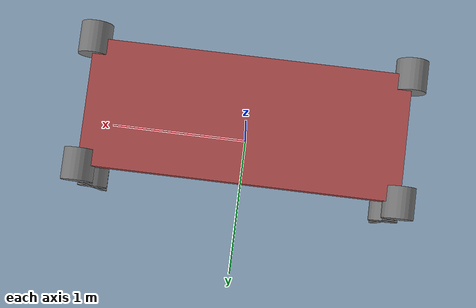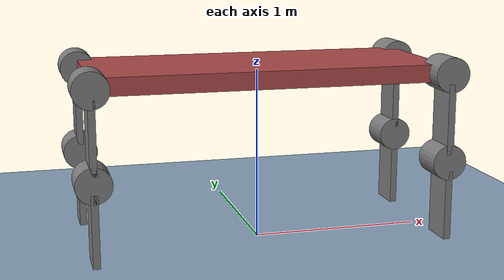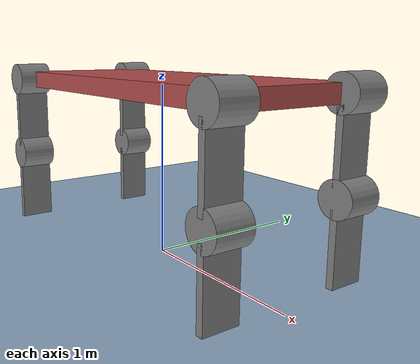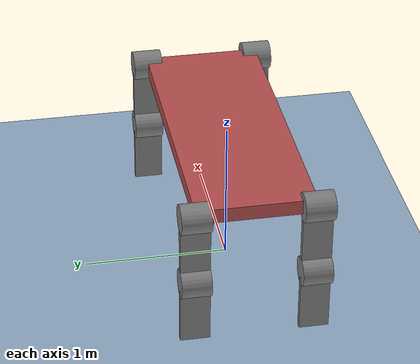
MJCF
<mujoco>
  <option gravity="0 0 -9.81" density="1.204" viscosity="1.8e-5" integrator="implicit"/>

  <visual>
    <global elevation="-10"/>
    <headlight ambient="0.35 0.35 0.35" diffuse="0.65 0.65 0.65" specular="0.10 0.10 0.10"/>
  </visual>

  <default>
    <tendon limited="true" width="0.003" rgba="1 1 1 1"/>
    <geom friction=".2"/>
    <default class="weight">
      <geom rgba=".8 .4 .8 1"/>
      <site rgba=".8 .4 .8 1"/>
    </default>
    <default class="balloon">
      <geom density="0.167" fluidshape="ellipsoid"/>
      <default class="pink">
        <geom rgba="1 .6 .7 1"/>
        <site rgba="1 .6 .7 1"/>
      </default>
      <default class="blue">
        <geom rgba=".3 .7 .9 1"/>
        <site rgba=".3 .7 .9 1"/>
      </default>
      <default class="green">
        <geom rgba=".4 .9 .5 1"/>
        <site rgba=".4 .9 .5 1"/>
      </default>
      <default class="orange">
        <geom rgba="1 .4 0 1"/>
        <site rgba="1 .4 0 1"/>
      </default>
    </default>
  </default>

  <asset>
    <texture name="grid" type="2d" builtin="checker" width="512" height="512" rgb2="0.7 0.8 0.9" rgb1="0.4 0.5 0.6"/>
    <material name="grid" texture="grid" texrepeat="2 2" texuniform="true" reflectance=".6"/>
  </asset>

  <worldbody>
    <geom name="ground" type="plane" size="5 5 .05" pos="0 0 0" material="grid" solref="0.004 1" solimp="0.9 0.95 0.001" />

    <camera name="Above" pos="0 0 2" xyaxes="1 0 0 0 1 0"/>
    <camera name="Side" pos="0 -2 .2" xyaxes="1 0 0 0 .02 .97"/>
    <!-- 俯瞰気味のカメラ -->
    <camera name="holistic view" pos="0 -3 2" xyaxes="1 0 0 0 1 0"/>

    <!-- シーン全体を照らす3点ライト -->
    <light name="sun_key" directional="true" diffuse="0.75 0.75 0.75" specular="0.20 0.20 0.20"
           pos="1 1 4" dir="-1 -1 -2" castshadow="true"/>
    <light name="sun_fill" directional="true" diffuse="0.45 0.45 0.45" specular="0.05 0.05 0.05"
           pos="-2 -1 3" dir="1 1 -1" castshadow="false"/>
    <light name="sun_rim" directional="true" diffuse="0.25 0.25 0.25" specular="0.05 0.05 0.05"
           pos="-1 2 2" dir="0 -1 -1" castshadow="false"/>

    <body name="board1" pos="0 0 1">
      <freejoint/>
      <geom type="box" size="1.0 0.4 0.05" mass="2" rgba="0.7 0.3 0.3 1"/>

      <body name="front_right_connection" pos="1.0 0.4 0">
        <joint name="front_right_leg" type="hinge" pos="0 0 0" damping="1.0" axis="0 1 0" />
        <geom type="cylinder" size="0.1 0.1" euler="90 0 0" mass="0.5"/>
        <body name="front_right_board" pos="0 0 -0.25">
          <geom type="box" size="0.02 0.1 0.2" mass="0.5" />
          <body name="front_right_connection2" pos = "0 0 -0.25">
            <joint name="front_right_leg2" type="hinge" pos="0 0 0" damping="1.0" axis="0 1 0" />
            <geom type="cylinder" size="0.1 0.1" euler="90 0 0" mass="0.5"/>
            <body name="front_right_board2" pos="0 0 -0.25">
              <geom type="box" size="0.02 0.1 0.2" mass="0.5" />
            </body>
          </body>
        </body>
      </body>

      <body name="front_left_connection" pos="1.0 -0.4 0">
        <joint name="front_left_leg" type="hinge" pos="0 0 0" damping="1.0" axis="0 1 0" />
        <geom type="cylinder" size="0.1 0.1" euler="90 0 0" mass="0.5"/>
        <body name="front_left_board" pos="0 0 -0.25">
          <geom type="box" size="0.02 0.1 0.2" mass="0.5" />
          <body name="front_left_connection2" pos = "0 0 -0.25">
            <joint name="front_left_leg2" type="hinge" pos="0 0 0" damping="1.0" axis="0 1 0" />
            <geom type="cylinder" size="0.1 0.1" euler="90 0 0" mass="0.5"/>
            <body name="front_left_board2" pos="0 0 -0.25">
              <geom type="box" size="0.02 0.1 0.2" mass="0.5" />
            </body>
          </body>
        </body>
      </body>

      <body name="back_right_connection" pos="-1.0 0.4 0">
        <joint name="back_right_leg" type="hinge" pos="0 0 0" damping="1.0" axis="0 1 0"/>
        <geom type="cylinder" size="0.1 0.1" euler="90 0 0" mass="0.5" />
        <body name="back_right_board" pos="0 0 -0.25">
          <geom type="box" size="0.02 0.1 0.2" mass="0.5" />
          <body name="back_right_connection2" pos = "0 0 -0.25">
            <joint name="back_right_leg2" type="hinge" pos="0 0 0" damping="1.0" axis="0 1 0" />
            <geom type="cylinder" size="0.1 0.1" euler="90 0 0" mass="0.5"/>
            <body name="back_right_board2" pos="0 0 -0.25">
              <geom type="box" size="0.02 0.1 0.2" mass="0.5" />
            </body>
          </body>
        </body>
      </body>

      <body name="back_left_connection" pos="-1.0 -0.4 0">
        <joint name="back_left_leg" type="hinge" pos="0 0 0" damping="1.0" axis="0 1 0"/>
        <geom type="cylinder" size="0.1 0.1" euler="90 0 0" mass="0.5" />
        <body name="back_left_board" pos="0 0 -0.25">
          <geom type="box" size="0.02 0.1 0.2" mass="0.5" />
          <body name="back_left_connection2" pos = "0 0 -0.25">
            <joint name="back_left_leg2" type="hinge" pos="0 0 0" damping="1.0" axis="0 1 0" />
            <geom type="cylinder" size="0.1 0.1" euler="90 0 0" mass="0.5"/>
            <body name="back_left_board2" pos="0 0 -0.25">
              <geom type="box" size="0.02 0.1 0.2" mass="0.5" />
            </body>
          </body>
        </body>
      </body>

    </body>
  </worldbody>

  <actuator>
    <position name="front_left_motor" joint="front_left_leg" kp="100"/>
    <position name="front_left_motor2" joint="front_left_leg2" kp="100"/>
    <position name="front_right_motor" joint="front_right_leg" kp="100"/>
    <position name="front_right_motor2" joint="front_right_leg2" kp="100"/>
    <position name="back_left_motor" joint="back_left_leg" kp="100"/>
    <position name="back_left_motor2" joint="back_left_leg2" kp="100"/>
    <position name="back_right_motor" joint="back_right_leg" kp="100"/>
    <position name="back_right_motor2" joint="back_right_leg2" kp="100"/>
  </actuator>
</mujoco>
